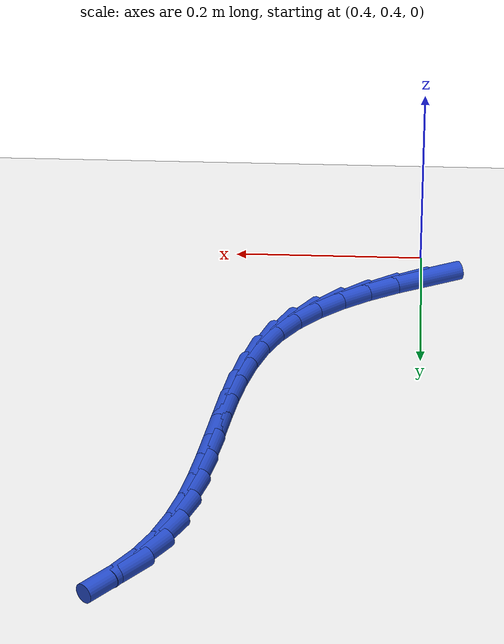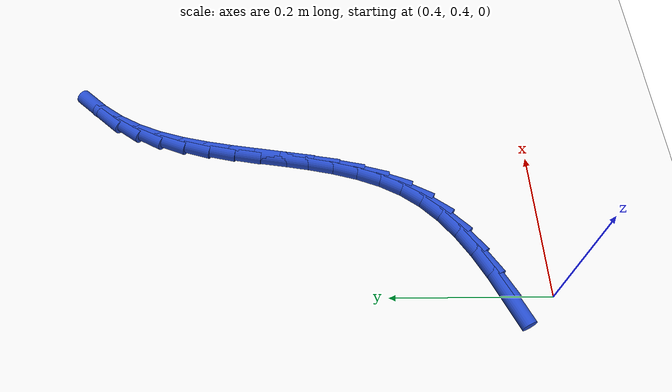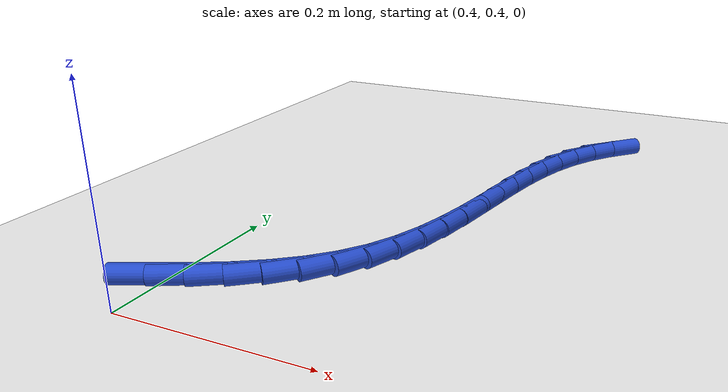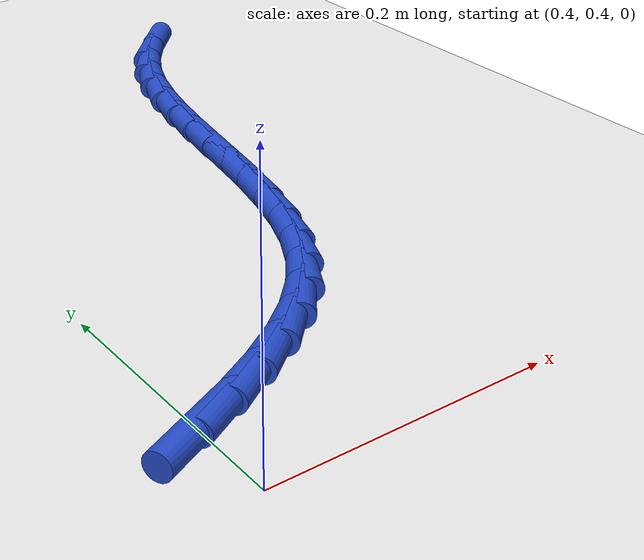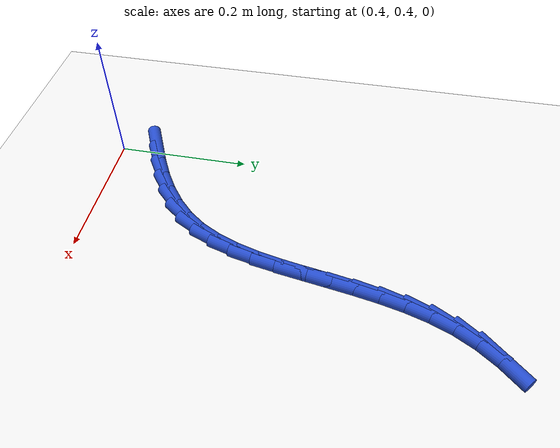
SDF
<sdf version="1.6">
 <world name="default">
  <model name="ground_plane">
   <static>1</static>
   <link name="link">
    <collision name="collision">
     <geometry><plane><normal>0 0 1</normal><size>100 100</size></plane></geometry>
     <surface><friction><ode><mu>100</mu><mu2>50</mu2></ode></friction></surface>
    </collision>
    <visual name="visual">
     <cast_shadows>0</cast_shadows>
     <geometry><plane><normal>0 0 1</normal><size>100 100</size></plane></geometry>
     <material>
      <script><uri>file://media/materials/scripts/gazebo.material</uri><name>Gazebo/WhiteGlow</name></script>
     </material>
    </visual>
   </link>
  </model>
  <model name="line">
   <link name="link_20">
    <pose>0.39503450254285655 0.4551842161775361 0.01 0 1.57 0.43522054618761513</pose>
    <collision name="collision">
     <geometry><cylinder><radius>0.01</radius><length>0.08</length></cylinder></geometry>
    </collision>
    <visual name="visual">
     <material>
      <script><name>Gazebo/Blue</name><uri>file://media/materials/scripts/gazebo.material</uri></script>
     </material>
     <geometry><cylinder><radius>0.01</radius><length>0.08</length></cylinder></geometry>
    </visual>
   </link>
   <link name="link_21">
    <pose>0.4268607172091969 0.46998196892904753 0.01 0 1.57 0.4935467505105887</pose>
    <collision name="collision">
     <geometry><cylinder><radius>0.01</radius><length>0.08</length></cylinder></geometry>
    </collision>
    <visual name="visual">
     <material>
      <script><name>Gazebo/Blue</name><uri>file://media/materials/scripts/gazebo.material</uri></script>
     </material>
     <geometry><cylinder><radius>0.01</radius><length>0.08</length></cylinder></geometry>
    </visual>
   </link>
   <link name="link_22">
    <pose>0.4568672458651484 0.4861240594019064 0.01 0 1.57 0.5710039123562387</pose>
    <collision name="collision">
     <geometry><cylinder><radius>0.01</radius><length>0.08</length></cylinder></geometry>
    </collision>
    <visual name="visual">
     <material>
      <script><name>Gazebo/Blue</name><uri>file://media/materials/scripts/gazebo.material</uri></script>
     </material>
     <geometry><cylinder><radius>0.01</radius><length>0.08</length></cylinder></geometry>
    </visual>
   </link>
   <link name="link_23">
    <pose>0.48459972113142963 0.5039390083930466 0.01 0 1.57 0.6701661214677855</pose>
    <collision name="collision">
     <geometry><cylinder><radius>0.01</radius><length>0.08</length></cylinder></geometry>
    </collision>
    <visual name="visual">
     <material>
      <script><name>Gazebo/Blue</name><uri>file://media/materials/scripts/gazebo.material</uri></script>
     </material>
     <geometry><cylinder><radius>0.01</radius><length>0.08</length></cylinder></geometry>
    </visual>
   </link>
   <link name="link_24">
    <pose>0.5096037756287588 0.5237553366994018 0.01 0 1.57 0.7927889905109694</pose>
    <collision name="collision">
     <geometry><cylinder><radius>0.01</radius><length>0.08</length></cylinder></geometry>
    </collision>
    <visual name="visual">
     <material>
      <script><name>Gazebo/Blue</name><uri>file://media/materials/scripts/gazebo.material</uri></script>
     </material>
     <geometry><cylinder><radius>0.01</radius><length>0.08</length></cylinder></geometry>
    </visual>
   </link>
   <link name="link_25">
    <pose>0.5314250419778546 0.5459015651179057 0.01 0 1.57 0.9379550338414256</pose>
    <collision name="collision">
     <geometry><cylinder><radius>0.01</radius><length>0.08</length></cylinder></geometry>
    </collision>
    <visual name="visual">
     <material>
      <script><name>Gazebo/Blue</name><uri>file://media/materials/scripts/gazebo.material</uri></script>
     </material>
     <geometry><cylinder><radius>0.01</radius><length>0.08</length></cylinder></geometry>
    </visual>
   </link>
   <link name="link_26">
    <pose>0.5496154136914476 0.5707018088195751 0.01 0 1.57 1.0852024332402437</pose>
    <collision name="collision">
     <geometry><cylinder><radius>0.01</radius><length>0.08</length></cylinder></geometry>
    </collision>
    <visual name="visual">
     <material>
      <script><name>Gazebo/Blue</name><uri>file://media/materials/scripts/gazebo.material</uri></script>
     </material>
     <geometry><cylinder><radius>0.01</radius><length>0.08</length></cylinder></geometry>
    </visual>
   </link>
   <link name="link_27">
    <pose>0.5641267064366456 0.5981987682177582 0.01 0 1.57 1.2047762585858934</pose>
    <collision name="collision">
     <geometry><cylinder><radius>0.01</radius><length>0.08</length></cylinder></geometry>
    </collision>
    <visual name="visual">
     <material>
      <script><name>Gazebo/Blue</name><uri>file://media/materials/scripts/gazebo.material</uri></script>
     </material>
     <geometry><cylinder><radius>0.01</radius><length>0.08</length></cylinder></geometry>
    </visual>
   </link>
   <link name="link_28">
    <pose>0.5755449876322221 0.6279888373608263 0.01 0 1.57 1.2946129401444089</pose>
    <collision name="collision">
     <geometry><cylinder><radius>0.01</radius><length>0.08</length></cylinder></geometry>
    </collision>
    <visual name="visual">
     <material>
      <script><name>Gazebo/Blue</name><uri>file://media/materials/scripts/gazebo.material</uri></script>
     </material>
     <geometry><cylinder><radius>0.01</radius><length>0.08</length></cylinder></geometry>
    </visual>
   </link>
   <link name="link_29">
    <pose>0.5845125990711096 0.6596288114922465 0.01 0 1.57 1.3574516544420843</pose>
    <collision name="collision">
     <geometry><cylinder><radius>0.01</radius><length>0.08</length></cylinder></geometry>
    </collision>
    <visual name="visual">
     <material>
      <script><name>Gazebo/Blue</name><uri>file://media/materials/scripts/gazebo.material</uri></script>
     </material>
     <geometry><cylinder><radius>0.01</radius><length>0.08</length></cylinder></geometry>
    </visual>
   </link>
   <link name="link_30">
    <pose>0.5916718825462428 0.6926754858554875 0.01 0 1.57 1.3963664404026424</pose>
    <collision name="collision">
     <geometry><cylinder><radius>0.01</radius><length>0.08</length></cylinder></geometry>
    </collision>
    <visual name="visual">
     <material>
      <script><name>Gazebo/Blue</name><uri>file://media/materials/scripts/gazebo.material</uri></script>
     </material>
     <geometry><cylinder><radius>0.01</radius><length>0.08</length></cylinder></geometry>
    </visual>
   </link>
   <link name="link_31">
    <pose>0.5976651798505553 0.7266856556940167 0.01 0 1.57 1.4137007249482834</pose>
    <collision name="collision">
     <geometry><cylinder><radius>0.01</radius><length>0.08</length></cylinder></geometry>
    </collision>
    <visual name="visual">
     <material>
      <script><name>Gazebo/Blue</name><uri>file://media/materials/scripts/gazebo.material</uri></script>
     </material>
     <geometry><cylinder><radius>0.01</radius><length>0.08</length></cylinder></geometry>
    </visual>
   </link>
   <link name="link_32">
    <pose>0.6031348327769809 0.7612161162513018 0.01 0 1.57 1.4107004888592813</pose>
    <collision name="collision">
     <geometry><cylinder><radius>0.01</radius><length>0.08</length></cylinder></geometry>
    </collision>
    <visual name="visual">
     <material>
      <script><name>Gazebo/Blue</name><uri>file://media/materials/scripts/gazebo.material</uri></script>
     </material>
     <geometry><cylinder><radius>0.01</radius><length>0.08</length></cylinder></geometry>
    </visual>
   </link>
   <link name="link_33">
    <pose>0.6087231831184532 0.795823662770811 0.01 0 1.57 1.3874487769452046</pose>
    <collision name="collision">
     <geometry><cylinder><radius>0.01</radius><length>0.08</length></cylinder></geometry>
    </collision>
    <visual name="visual">
     <material>
      <script><name>Gazebo/Blue</name><uri>file://media/materials/scripts/gazebo.material</uri></script>
     </material>
     <geometry><cylinder><radius>0.01</radius><length>0.08</length></cylinder></geometry>
    </visual>
   </link>
   <link name="link_34">
    <pose>0.6150725726679064 0.8300650904960117 0.01 0 1.57 1.3429279647191183</pose>
    <collision name="collision">
     <geometry><cylinder><radius>0.01</radius><length>0.08</length></cylinder></geometry>
    </collision>
    <visual name="visual">
     <material>
      <script><name>Gazebo/Blue</name><uri>file://media/materials/scripts/gazebo.material</uri></script>
     </material>
     <geometry><cylinder><radius>0.01</radius><length>0.08</length></cylinder></geometry>
    </visual>
   </link>
   <link name="link_35">
    <pose>0.6228253432182742 0.8634971946703722 0.01 0 1.57 1.2752215546825723</pose>
    <collision name="collision">
     <geometry><cylinder><radius>0.01</radius><length>0.08</length></cylinder></geometry>
    </collision>
    <visual name="visual">
     <material>
      <script><name>Gazebo/Blue</name><uri>file://media/materials/scripts/gazebo.material</uri></script>
     </material>
     <geometry><cylinder><radius>0.01</radius><length>0.08</length></cylinder></geometry>
    </visual>
   </link>
   <link name="link_36">
    <pose>0.6326238365624903 0.8956767705373601 0.01 0 1.57 1.182031020234204</pose>
    <collision name="collision">
     <geometry><cylinder><radius>0.01</radius><length>0.08</length></cylinder></geometry>
    </collision>
    <visual name="visual">
     <material>
      <script><name>Gazebo/Blue</name><uri>file://media/materials/scripts/gazebo.material</uri></script>
     </material>
     <geometry><cylinder><radius>0.01</radius><length>0.08</length></cylinder></geometry>
    </visual>
   </link>
   <link name="link_37">
    <pose>0.6451103944934886 0.9261606133404434 0.01 0 1.57 1.0628653737954108</pose>
    <collision name="collision">
     <geometry><cylinder><radius>0.01</radius><length>0.08</length></cylinder></geometry>
    </collision>
    <visual name="visual">
     <material>
      <script><name>Gazebo/Blue</name><uri>file://media/materials/scripts/gazebo.material</uri></script>
     </material>
     <geometry><cylinder><radius>0.01</radius><length>0.08</length></cylinder></geometry>
    </visual>
   </link>
   <link name="link_38">
    <pose>0.6608985629883449 0.9545236743563121 0.01 0 1.57 0.9394329332841489</pose>
    <collision name="collision">
     <geometry><cylinder><radius>0.01</radius><length>0.08</length></cylinder></geometry>
    </collision>
    <visual name="visual">
     <material>
      <script><name>Gazebo/Blue</name><uri>file://media/materials/scripts/gazebo.material</uri></script>
     </material>
     <geometry><cylinder><radius>0.01</radius><length>0.08</length></cylinder></geometry>
    </visual>
   </link>
   <link name="link_39">
    <pose>0.680036782411011 0.980697209275339 0.01 0 1.57 0.8333425290194094</pose>
    <collision name="collision">
     <geometry><cylinder><radius>0.01</radius><length>0.08</length></cylinder></geometry>
    </collision>
    <visual name="visual">
     <material>
      <script><name>Gazebo/Blue</name><uri>file://media/materials/scripts/gazebo.material</uri></script>
     </material>
     <geometry><cylinder><radius>0.01</radius><length>0.08</length></cylinder></geometry>
    </visual>
   </link>
  </model>
 </world>
</sdf>
